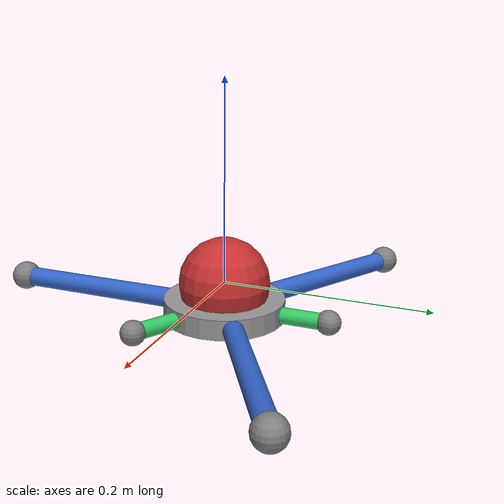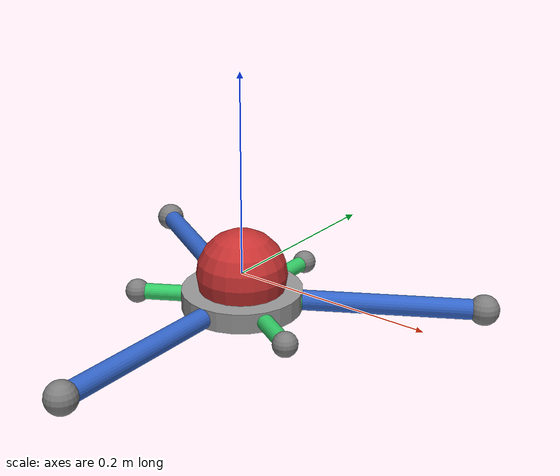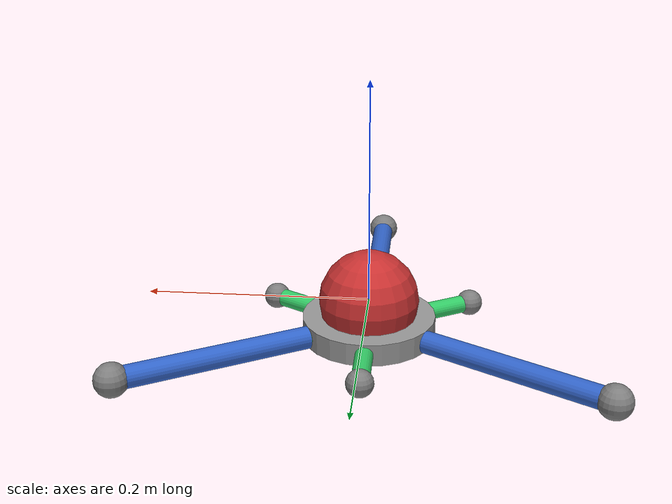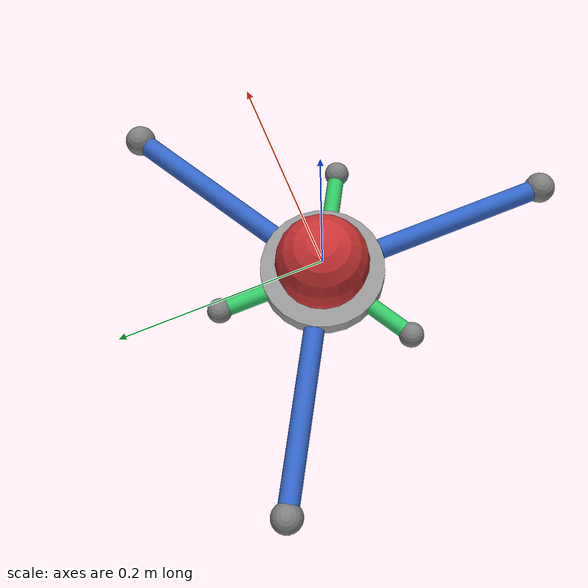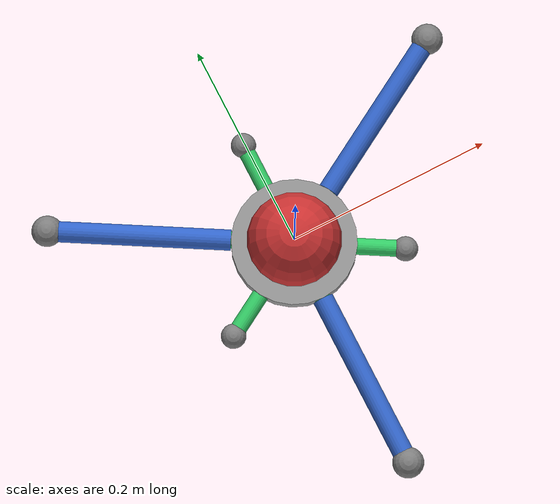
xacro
<?xml version="1.0"?>
<robot xmlns:xacro="http://www.ros.org/wiki/xacro" name="delta_robot">

  <xacro:property name="delta_e" value="0.045"/>
  <xacro:property name="delta_f" value="0.11812"/>
  <xacro:property name="delta_re" value="0.34"/>
  <xacro:property name="delta_rf" value="0.17438"/>
  <xacro:property name="delta_motor_z_offset" value="-0.025"/>

  <!-- Base link -->
  <link name="base_link">
    <visual>
      <geometry>
        <cylinder length="0.02" radius="0.06"/>
      </geometry>
  <origin xyz="0 0 ${delta_motor_z_offset}" rpy="0 0 0"/>
      <material name="gray"><color rgba="0.6 0.6 0.6 1.0"/></material>
    </visual>
    <collision>
      <geometry>
        <cylinder length="0.02" radius="0.06"/>
      </geometry>
      <origin xyz="0 0 ${delta_motor_z_offset}" rpy="0 0 0"/>
    </collision>
  </link>

  <!-- Three simple revolute joints and arms for visualization -->
  <xacro:macro name="arm" params="idx x y yaw">
    <!-- Upper arm (connected to motor) -->
    <link name="upper_link_${idx}">
      <visual>
        <geometry>
          <cylinder length="${delta_rf}" radius="0.01"/>
        </geometry>
        <!-- Cylinder rotated to lie horizontally for Z-axis rotation -->
        <origin xyz="${delta_rf/2.0} 0 0" rpy="0 ${pi/2} 0"/>
        <material name="blue"><color rgba="0.2 0.4 0.8 1.0"/></material>
      </visual>
      <collision>
        <geometry>
          <cylinder length="${delta_rf}" radius="0.01"/>
        </geometry>
        <origin xyz="${delta_rf/2.0} 0 0" rpy="0 ${pi/2} 0"/>
      </collision>
    </link>

    <joint name="joint${idx}" type="revolute">
      <parent link="base_link"/>
      <child link="upper_link_${idx}"/>
      <origin xyz="${x} ${y} ${delta_motor_z_offset}" rpy="0 0 ${yaw}"/>
      <axis xyz="0 1 0"/>
      <limit effort="10.0" velocity="10.0" lower="-3.1416" upper="3.1416"/>
    </joint>

    <!-- Elbow joint (virtual, for visualization only) -->
    <link name="elbow_${idx}">
      <visual>
        <geometry>
          <sphere radius="0.015"/>
        </geometry>
        <material name="gray"><color rgba="0.5 0.5 0.5 1.0"/></material>
      </visual>
      <collision>
        <geometry>
          <sphere radius="0.015"/>
        </geometry>
      </collision>
    </link>

    <joint name="elbow_joint_${idx}" type="fixed">
      <parent link="upper_link_${idx}"/>
      <child link="elbow_${idx}"/>
      <origin xyz="${delta_rf} 0 0" rpy="0 0 0"/>
    </joint>

    <!-- Ball joint intermediate link for pitch rotation -->
    <link name="lower_pitch_link_${idx}"/>

    <!-- Ball joint pitch: rotation around Y axis -->
    <joint name="elbow_pitch_${idx}" type="continuous">
      <parent link="elbow_${idx}"/>
      <child link="lower_pitch_link_${idx}"/>
      <origin xyz="0 0 0" rpy="0 0 0"/>
      <axis xyz="0 1 0"/>  <!-- Pitch around Y axis -->
    </joint>

    <!-- Lower arm (forearm, connected to end-effector via ball joint) -->
    <link name="lower_link_${idx}">
      <visual>
        <geometry>
          <cylinder length="${delta_re}" radius="0.008"/>
        </geometry>
        <!-- cylinder centered at origin, extends along -X (toward EE) -->
        <origin xyz="${-delta_re/2.0} 0 0" rpy="0 ${pi/2} 0"/>
        <material name="green"><color rgba="0.2 0.8 0.4 1.0"/></material>
      </visual>
      <collision>
        <geometry>
          <cylinder length="${delta_re}" radius="0.008"/>
        </geometry>
        <origin xyz="${-delta_re/2.0} 0 0" rpy="0 ${pi/2} 0"/>
      </collision>
    </link>

    <!-- Ball joint yaw: rotation around Z axis (after pitch) -->
    <joint name="elbow_yaw_${idx}" type="continuous">
      <parent link="lower_pitch_link_${idx}"/>
      <child link="lower_link_${idx}"/>
      <origin xyz="0 0 0" rpy="0 0 0"/>
      <axis xyz="0 0 1"/>  <!-- Yaw around Z axis (after pitch rotation) -->
    </joint>

    <!-- End point of lower arm (where it attaches to EE platform) -->
    <link name="lower_arm_end_${idx}">
      <visual>
        <geometry>
          <sphere radius="0.012"/>
        </geometry>
        <material name="gray"><color rgba="0.5 0.5 0.5 1.0"/></material>
      </visual>
      <collision>
        <geometry>
          <sphere radius="0.012"/>
        </geometry>
      </collision>
    </link>

    <joint name="lower_arm_end_joint_${idx}" type="fixed">
      <parent link="lower_link_${idx}"/>
      <child link="lower_arm_end_${idx}"/>
      <origin xyz="${-delta_re} 0 0" rpy="0 0 0"/>  <!-- At the end of the lower arm (in -X direction) -->
    </joint>
  </xacro:macro>

  <!-- instantiate three arms at 0, 120, 240 degrees -->
  <!-- positions on base rim at radius 0.06 -->
  <!-- FK convention: arm 1 extends in -Y direction (0°), then 120°, 240° -->
  <!-- Yaw rotates the joint frame so local X-axis points along the arm direction -->
  <xacro:arm idx="1" x="0.0" y="-0.06" yaw="-1.57079632679"/>
  <xacro:arm idx="2" x="0.051961524" y="0.03" yaw="0.52359877559"/>
  <xacro:arm idx="3" x="-0.051961524" y="0.03" yaw="2.61799387799"/>

  <!-- End-effector frame (visual only) -->
  <link name="ee">
    <visual>
      <geometry>
        <sphere radius="${delta_e}"/>
      </geometry>
      <material name="red"><color rgba="0.8 0.2 0.2 1.0"/></material>
    </visual>
    <collision>
      <geometry>
        <sphere radius="${delta_e}"/>
      </geometry>
    </collision>
  </link>

  <!-- Floating joint — robot_state_publisher ignores this;
       the delta kinematics controller broadcasts the EE TF directly. -->
  <joint name="ee_joint" type="floating">
    <parent link="base_link"/>
    <child link="ee"/>
    <origin xyz="0 0 0" rpy="0 0 0"/>
  </joint>

  <!-- Visual markers for EE platform attachment points (actual lower arm end positions) -->
  <!-- These should match where the lower_arm_end markers are positioned -->
  <link name="ee_attach_1"/>  <!-- No visual - disabled to reduce clutter -->

  <joint name="ee_attach_joint_1" type="fixed">
    <parent link="ee"/>
    <child link="ee_attach_1"/>
    <origin xyz="0 0 0" rpy="0 0 0"/>
  </joint>

  <link name="ee_attach_2"/>  <!-- No visual - disabled -->

  <joint name="ee_attach_joint_2" type="fixed">
    <parent link="ee"/>
    <child link="ee_attach_2"/>
    <origin xyz="0 0 0" rpy="0 0 0"/>
  </joint>

  <link name="ee_attach_3"/>  <!-- No visual - disabled -->

  <joint name="ee_attach_joint_3" type="fixed">
    <parent link="ee"/>
    <child link="ee_attach_3"/>
    <origin xyz="0 0 0" rpy="0 0 0"/>
    <origin xyz="${-delta_e * 0.866025404} ${-delta_e * 0.5} 0" rpy="0 0 0"/>  <!-- Arm 3 at 240° -->
  </joint>

  <ros2_control name="MockHardwareSystem" type="system">
    <hardware>
      <plugin>mock_components/GenericSystem</plugin>
      <param name="calculate_dynamics">false</param>
      <param name="position_state_following_offset">0.0</param>
      <param name="mock_sensor_commands">false</param>
    </hardware>

    <joint name="joint1">
      <command_interface name="position"/>
      <state_interface name="position">
        <param name="initial_value">0.0</param>
      </state_interface>
      <state_interface name="velocity"/>
    </joint>

    <joint name="joint2">
      <command_interface name="position"/>
      <state_interface name="position">
        <param name="initial_value">0.0</param>
      </state_interface>
      <state_interface name="velocity"/>
    </joint>

    <joint name="joint3">
      <command_interface name="position"/>
      <state_interface name="position">
        <param name="initial_value">0.0</param>
      </state_interface>
      <state_interface name="velocity"/>
    </joint>

    <!-- Fake Force-Torque Sensor for Admittance Control -->
    <sensor name="tcp_fts_sensor">
      <state_interface name="force.x"/>
      <state_interface name="force.y"/>
      <state_interface name="force.z"/>
      <state_interface name="torque.x"/>
      <state_interface name="torque.y"/>
      <state_interface name="torque.z"/>
      <param name="frame_id">end_effector</param>
    </sensor>

  </ros2_control>

</robot>
